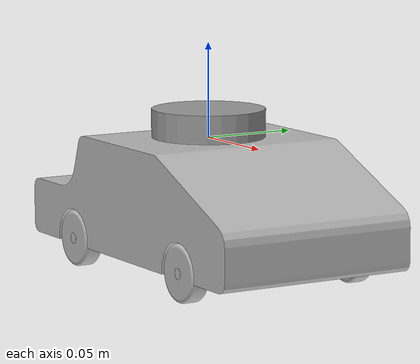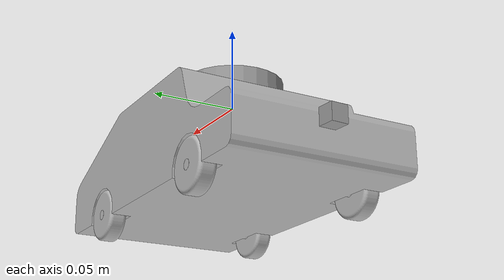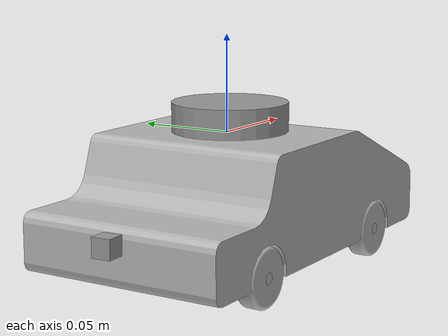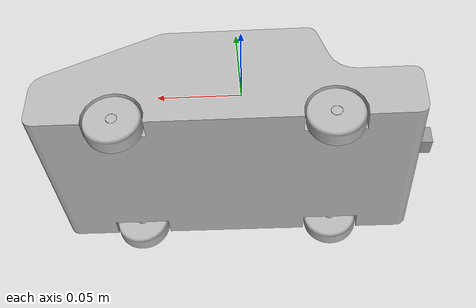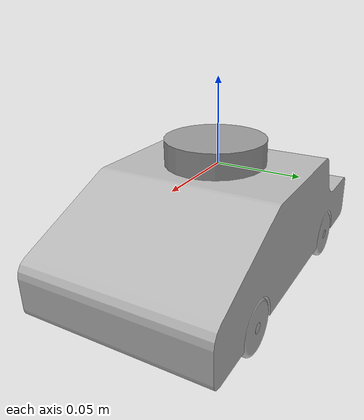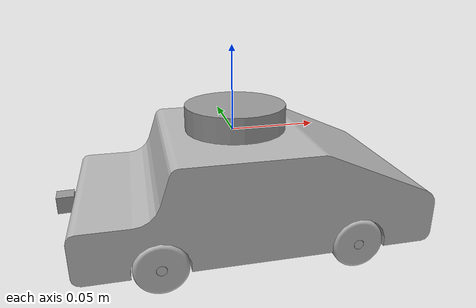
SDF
<?xml version='1.0'?>
<sdf version='1.5'>
  <model name='bfl_14'>
    <link name='base_link'>
      <inertial>
        <pose>0.009108 0 -0.033726 0 -0 0</pose>
        <mass>1.01774</mass>
        <inertia>
          <ixx>0.00123679</ixx>
          <ixy>4.78648e-20</ixy>
          <ixz>-3.11721e-05</ixz>
          <iyy>0.00293732</iyy>
          <iyz>1.98612e-20</iyz>
          <izz>0.00365409</izz>
        </inertia>
      </inertial>
      <self_collide>0</self_collide>
      <enable_wind>0</enable_wind>
      <kinematic>0</kinematic>
      <pose>0 0 0 0 -0 0</pose>
      <visual name='base_link_visual'>
        <pose>0 0 0 0 -0 0</pose>
        <geometry>
          <mesh>
            <scale>1 1 1</scale>
            <uri>/home/bfl/catkin_ws/src/full_tesla_truck_urdf/meshes/base_link.STL</uri>
          </mesh>
        </geometry>
        <material>
          <shader type='pixel'/>
          <emissive>0 0 0 1</emissive>
        </material>
        <transparency>0</transparency>
        <cast_shadows>1</cast_shadows>
      </visual>
      <collision name='base_link_collision'>
        <laser_retro>0</laser_retro>
        <max_contacts>10</max_contacts>
        <pose>0 0 0 0 -0 0</pose>
        <geometry>
          <mesh>
            <uri>/home/bfl/catkin_ws/src/full_tesla_truck_urdf/meshes/base_link.STL</uri>
            <scale>1 1 1</scale>
          </mesh>
        </geometry>
        <surface>
          <friction>
            <ode>
              <mu>1</mu>
              <mu2>1</mu2>
              <fdir1>0 0 0</fdir1>
              <slip1>0</slip1>
              <slip2>0</slip2>
            </ode>
            <torsional>
              <coefficient>1</coefficient>
              <patch_radius>0</patch_radius>
              <surface_radius>0</surface_radius>
              <use_patch_radius>1</use_patch_radius>
              <ode>
                <slip>0</slip>
              </ode>
            </torsional>
          </friction>
          <bounce>
            <restitution_coefficient>0</restitution_coefficient>
            <threshold>1e+06</threshold>
          </bounce>
          <contact>
            <collide_without_contact>0</collide_without_contact>
            <collide_without_contact_bitmask>1</collide_without_contact_bitmask>
            <collide_bitmask>1</collide_bitmask>
            <ode>
              <soft_cfm>0</soft_cfm>
              <soft_erp>0.2</soft_erp>
              <kp>1e+13</kp>
              <kd>1</kd>
              <max_vel>0.01</max_vel>
              <min_depth>0</min_depth>
            </ode>
            <bullet>
              <split_impulse>1</split_impulse>
              <split_impulse_penetration_threshold>-0.01</split_impulse_penetration_threshold>
              <soft_cfm>0</soft_cfm>
              <soft_erp>0.2</soft_erp>
              <kp>1e+13</kp>
              <kd>1</kd>
            </bullet>
          </contact>
        </surface>
      </collision>
    </link>
    <link name='back_left_link'>
      <pose>-0.049669 0.054511 -0.056567 0 -0 0</pose>
      <inertial>
        <pose>0 -0.005 0 0 -0 0</pose>
        <mass>0.0066289</mass>
        <inertia>
          <ixx>4.3359e-07</ixx>
          <ixy>1.1029e-24</ixy>
          <ixz>2.93e-23</ixz>
          <iyy>7.6063e-07</iyy>
          <iyz>-1.7922e-24</iyz>
          <izz>4.3359e-07</izz>
        </inertia>
      </inertial>
      <self_collide>0</self_collide>
      <enable_wind>0</enable_wind>
      <kinematic>0</kinematic>
      <visual name='back_left_link_visual'>
        <pose>0 0 0 0 -0 0</pose>
        <geometry>
          <mesh>
            <scale>1 1 1</scale>
            <uri>/home/bfl/catkin_ws/src/full_tesla_truck_urdf/meshes/back_left_link.STL</uri>
          </mesh>
        </geometry>
        <material>
          <shader type='pixel'/>
        </material>
        <transparency>0</transparency>
        <cast_shadows>1</cast_shadows>
      </visual>
      <collision name='back_left_link_collision'>
        <laser_retro>0</laser_retro>
        <max_contacts>10</max_contacts>
        <pose>0 0 0 0 -0 0</pose>
        <geometry>
          <mesh>
            <uri>/home/bfl/catkin_ws/src/full_tesla_truck_urdf/meshes/back_left_link.STL</uri>
            <scale>1 1 1</scale>
          </mesh>
        </geometry>
        <surface>
          <friction>
            <ode>
              <mu>1</mu>
              <mu2>1</mu2>
              <fdir1>0 0 0</fdir1>
              <slip1>0</slip1>
              <slip2>0</slip2>
            </ode>
            <torsional>
              <coefficient>1</coefficient>
              <patch_radius>0</patch_radius>
              <surface_radius>0</surface_radius>
              <use_patch_radius>1</use_patch_radius>
              <ode>
                <slip>0</slip>
              </ode>
            </torsional>
          </friction>
          <bounce>
            <restitution_coefficient>0</restitution_coefficient>
            <threshold>1e+06</threshold>
          </bounce>
          <contact>
            <collide_without_contact>0</collide_without_contact>
            <collide_without_contact_bitmask>1</collide_without_contact_bitmask>
            <collide_bitmask>1</collide_bitmask>
            <ode>
              <soft_cfm>0</soft_cfm>
              <soft_erp>0.2</soft_erp>
              <kp>1e+13</kp>
              <kd>1</kd>
              <max_vel>0.01</max_vel>
              <min_depth>0</min_depth>
            </ode>
            <bullet>
              <split_impulse>1</split_impulse>
              <split_impulse_penetration_threshold>-0.01</split_impulse_penetration_threshold>
              <soft_cfm>0</soft_cfm>
              <soft_erp>0.2</soft_erp>
              <kp>1e+13</kp>
              <kd>1</kd>
            </bullet>
          </contact>
        </surface>
      </collision>
    </link>
    <link name='back_right_link'>
      <pose>-0.049669 -0.054464 -0.056567 0 -0 0</pose>
      <inertial>
        <pose>0 0.005 0 0 -0 0</pose>
        <mass>0.0066289</mass>
        <inertia>
          <ixx>4.3359e-07</ixx>
          <ixy>-3.108e-24</ixy>
          <ixz>-2.4808e-23</ixz>
          <iyy>7.6063e-07</iyy>
          <iyz>-1.6326e-24</iyz>
          <izz>4.3359e-07</izz>
        </inertia>
      </inertial>
      <self_collide>0</self_collide>
      <enable_wind>0</enable_wind>
      <kinematic>0</kinematic>
      <visual name='back_right_link_visual'>
        <pose>0 0 0 0 -0 0</pose>
        <geometry>
          <mesh>
            <scale>1 1 1</scale>
            <uri>/home/bfl/catkin_ws/src/full_tesla_truck_urdf/meshes/back_right_link.STL</uri>
          </mesh>
        </geometry>
        <material>
          <shader type='pixel'/>
        </material>
        <transparency>0</transparency>
        <cast_shadows>1</cast_shadows>
      </visual>
      <collision name='back_right_link_collision'>
        <laser_retro>0</laser_retro>
        <max_contacts>10</max_contacts>
        <pose>0 0 0 0 -0 0</pose>
        <geometry>
          <mesh>
            <uri>/home/bfl/catkin_ws/src/full_tesla_truck_urdf/meshes/back_right_link.STL</uri>
            <scale>1 1 1</scale>
          </mesh>
        </geometry>
        <surface>
          <friction>
            <ode>
              <mu>1</mu>
              <mu2>1</mu2>
              <fdir1>0 0 0</fdir1>
              <slip1>0</slip1>
              <slip2>0</slip2>
            </ode>
            <torsional>
              <coefficient>1</coefficient>
              <patch_radius>0</patch_radius>
              <surface_radius>0</surface_radius>
              <use_patch_radius>1</use_patch_radius>
              <ode>
                <slip>0</slip>
              </ode>
            </torsional>
          </friction>
          <bounce>
            <restitution_coefficient>0</restitution_coefficient>
            <threshold>1e+06</threshold>
          </bounce>
          <contact>
            <collide_without_contact>0</collide_without_contact>
            <collide_without_contact_bitmask>1</collide_without_contact_bitmask>
            <collide_bitmask>1</collide_bitmask>
            <ode>
              <soft_cfm>0</soft_cfm>
              <soft_erp>0.2</soft_erp>
              <kp>1e+13</kp>
              <kd>1</kd>
              <max_vel>0.01</max_vel>
              <min_depth>0</min_depth>
            </ode>
            <bullet>
              <split_impulse>1</split_impulse>
              <split_impulse_penetration_threshold>-0.01</split_impulse_penetration_threshold>
              <soft_cfm>0</soft_cfm>
              <soft_erp>0.2</soft_erp>
              <kp>1e+13</kp>
              <kd>1</kd>
            </bullet>
          </contact>
        </surface>
      </collision>
    </link>
    <link name='front_left_link'>
      <pose>0.06153 0.054495 -0.056567 0 -0 0</pose>
      <inertial>
        <pose>0 -0.005 0 0 -0 0</pose>
        <mass>0.0066289</mass>
        <inertia>
          <ixx>4.3359e-07</ixx>
          <ixy>-2.7573e-25</ixy>
          <ixz>5.076e-23</ixz>
          <iyy>7.6063e-07</iyy>
          <iyz>4.1359e-24</iyz>
          <izz>4.3359e-07</izz>
        </inertia>
      </inertial>
      <self_collide>0</self_collide>
      <enable_wind>0</enable_wind>
      <kinematic>0</kinematic>
      <visual name='front_left_link_visual'>
        <pose>0 0 0 0 -0 0</pose>
        <geometry>
          <mesh>
            <scale>1 1 1</scale>
            <uri>/home/bfl/catkin_ws/src/full_tesla_truck_urdf/meshes/front_left_link.STL</uri>
          </mesh>
        </geometry>
        <material>
          <shader type='pixel'/>
        </material>
        <transparency>0</transparency>
        <cast_shadows>1</cast_shadows>
      </visual>
      <collision name='front_left_link_collision'>
        <laser_retro>0</laser_retro>
        <max_contacts>10</max_contacts>
        <pose>0 0 0 0 -0 0</pose>
        <geometry>
          <mesh>
            <uri>/home/bfl/catkin_ws/src/full_tesla_truck_urdf/meshes/front_left_link.STL</uri>
            <scale>1 1 1</scale>
          </mesh>
        </geometry>
        <surface>
          <friction>
            <ode>
              <mu>1</mu>
              <mu2>1</mu2>
              <fdir1>0 0 0</fdir1>
              <slip1>0</slip1>
              <slip2>0</slip2>
            </ode>
            <torsional>
              <coefficient>1</coefficient>
              <patch_radius>0</patch_radius>
              <surface_radius>0</surface_radius>
              <use_patch_radius>1</use_patch_radius>
              <ode>
                <slip>0</slip>
              </ode>
            </torsional>
          </friction>
          <bounce>
            <restitution_coefficient>0</restitution_coefficient>
            <threshold>1e+06</threshold>
          </bounce>
          <contact>
            <collide_without_contact>0</collide_without_contact>
            <collide_without_contact_bitmask>1</collide_without_contact_bitmask>
            <collide_bitmask>1</collide_bitmask>
            <ode>
              <soft_cfm>0</soft_cfm>
              <soft_erp>0.2</soft_erp>
              <kp>1e+13</kp>
              <kd>1</kd>
              <max_vel>0.01</max_vel>
              <min_depth>0</min_depth>
            </ode>
            <bullet>
              <split_impulse>1</split_impulse>
              <split_impulse_penetration_threshold>-0.01</split_impulse_penetration_threshold>
              <soft_cfm>0</soft_cfm>
              <soft_erp>0.2</soft_erp>
              <kp>1e+13</kp>
              <kd>1</kd>
            </bullet>
          </contact>
        </surface>
      </collision>
    </link>
    <link name='front_right_link'>
      <pose>0.06153 -0.054505 -0.056567 0 -0 0</pose>
      <inertial>
        <pose>0 0.005 0 0 -0 0</pose>
        <mass>0.0066289</mass>
        <inertia>
          <ixx>4.3359e-07</ixx>
          <ixy>-2.8345e-24</ixy>
          <ixz>5.0785e-24</ixz>
          <iyy>7.6063e-07</iyy>
          <iyz>-1.8072e-24</iyz>
          <izz>4.3359e-07</izz>
        </inertia>
      </inertial>
      <self_collide>0</self_collide>
      <enable_wind>0</enable_wind>
      <kinematic>0</kinematic>
      <visual name='front_right_link_visual'>
        <pose>0 0 0 0 -0 0</pose>
        <geometry>
          <mesh>
            <scale>1 1 1</scale>
            <uri>/home/bfl/catkin_ws/src/full_tesla_truck_urdf/meshes/front_right_link.STL</uri>
          </mesh>
        </geometry>
        <material>
          <shader type='pixel'/>
        </material>
        <transparency>0</transparency>
        <cast_shadows>1</cast_shadows>
      </visual>
      <collision name='front_right_link_collision'>
        <laser_retro>0</laser_retro>
        <max_contacts>10</max_contacts>
        <pose>0 0 0 0 -0 0</pose>
        <geometry>
          <mesh>
            <uri>/home/bfl/catkin_ws/src/full_tesla_truck_urdf/meshes/front_right_link.STL</uri>
            <scale>1 1 1</scale>
          </mesh>
        </geometry>
        <surface>
          <friction>
            <ode>
              <mu>1</mu>
              <mu2>1</mu2>
              <fdir1>0 0 0</fdir1>
              <slip1>0</slip1>
              <slip2>0</slip2>
            </ode>
            <torsional>
              <coefficient>1</coefficient>
              <patch_radius>0</patch_radius>
              <surface_radius>0</surface_radius>
              <use_patch_radius>1</use_patch_radius>
              <ode>
                <slip>0</slip>
              </ode>
            </torsional>
          </friction>
          <bounce>
            <restitution_coefficient>0</restitution_coefficient>
            <threshold>1e+06</threshold>
          </bounce>
          <contact>
            <collide_without_contact>0</collide_without_contact>
            <collide_without_contact_bitmask>1</collide_without_contact_bitmask>
            <collide_bitmask>1</collide_bitmask>
            <ode>
              <soft_cfm>0</soft_cfm>
              <soft_erp>0.2</soft_erp>
              <kp>1e+13</kp>
              <kd>1</kd>
              <max_vel>0.01</max_vel>
              <min_depth>0</min_depth>
            </ode>
            <bullet>
              <split_impulse>1</split_impulse>
              <split_impulse_penetration_threshold>-0.01</split_impulse_penetration_threshold>
              <soft_cfm>0</soft_cfm>
              <soft_erp>0.2</soft_erp>
              <kp>1e+13</kp>
              <kd>1</kd>
            </bullet>
          </contact>
        </surface>
      </collision>
    </link>
    <link name='link_0'>
      <inertial>
        <mass>1</mass>
        <inertia>
          <ixx>0.145833</ixx>
          <ixy>0</ixy>
          <ixz>0</ixz>
          <iyy>0.145833</iyy>
          <iyz>0</iyz>
          <izz>0.125</izz>
        </inertia>
        <pose>0 0 0 0 -0 0</pose>
      </inertial>
      <pose>0.001446 -0.000805 0.008219 -3.1e-05 -8.2e-05 -0.307271</pose>
      <gravity>1</gravity>
      <self_collide>0</self_collide>
      <kinematic>0</kinematic>
      <enable_wind>0</enable_wind>
      <visual name='visual'>
        <pose>0 0 0 0 -0 0</pose>
        <geometry>
          <cylinder>
            <radius>0.03</radius>
            <length>0.015</length>
          </cylinder>
        </geometry>
        <material>
          <lighting>1</lighting>
          <script>
            <uri>file://media/materials/scripts/gazebo.material</uri>
            <name>Gazebo/Grey</name>
          </script>
          <shader type='pixel'>
            <normal_map>__default__</normal_map>
          </shader>
          <ambient>0.3 0.3 0.3 1</ambient>
          <diffuse>0.7 0.7 0.7 1</diffuse>
          <specular>0.01 0.01 0.01 1</specular>
          <emissive>0 0 0 1</emissive>
        </material>
        <transparency>0</transparency>
        <cast_shadows>1</cast_shadows>
      </visual>
      <collision name='collision'>
        <laser_retro>0</laser_retro>
        <max_contacts>10</max_contacts>
        <pose>0 0 0 0 -0 0</pose>
        <geometry>
          <cylinder>
            <radius>0.03</radius>
            <length>0.015</length>
          </cylinder>
        </geometry>
        <surface>
          <friction>
            <ode>
              <mu>1</mu>
              <mu2>1</mu2>
              <fdir1>0 0 0</fdir1>
              <slip1>0</slip1>
              <slip2>0</slip2>
            </ode>
            <torsional>
              <coefficient>1</coefficient>
              <patch_radius>0</patch_radius>
              <surface_radius>0</surface_radius>
              <use_patch_radius>1</use_patch_radius>
              <ode>
                <slip>0</slip>
              </ode>
            </torsional>
          </friction>
          <bounce>
            <restitution_coefficient>0</restitution_coefficient>
            <threshold>1e+06</threshold>
          </bounce>
          <contact>
            <collide_without_contact>0</collide_without_contact>
            <collide_without_contact_bitmask>1</collide_without_contact_bitmask>
            <collide_bitmask>1</collide_bitmask>
            <ode>
              <soft_cfm>0</soft_cfm>
              <soft_erp>0.2</soft_erp>
              <kp>1e+13</kp>
              <kd>1</kd>
              <max_vel>0.01</max_vel>
              <min_depth>0</min_depth>
            </ode>
            <bullet>
              <split_impulse>1</split_impulse>
              <split_impulse_penetration_threshold>-0.01</split_impulse_penetration_threshold>
              <soft_cfm>0</soft_cfm>
              <soft_erp>0.2</soft_erp>
              <kp>1e+13</kp>
              <kd>1</kd>
            </bullet>
          </contact>
        </surface>
      </collision>
    </link>
    <link name='link_1'>
      <inertial>
        <mass>1</mass>
        <inertia>
          <ixx>0.166667</ixx>
          <ixy>0</ixy>
          <ixz>0</ixz>
          <iyy>0.166667</iyy>
          <iyz>0</iyz>
          <izz>0.166667</izz>
        </inertia>
        <pose>0 0 0 0 -0 0</pose>
      </inertial>
      <pose>-0.099965 0.000523 -0.037493 -5.8e-05 -6.6e-05 0.057909</pose>
      <gravity>1</gravity>
      <self_collide>0</self_collide>
      <kinematic>0</kinematic>
      <enable_wind>0</enable_wind>
      <visual name='visual'>
        <pose>0 0 0 0 -0 0</pose>
        <geometry>
          <box>
            <size>0.01 0.01 0.01</size>
          </box>
        </geometry>
        <material>
          <lighting>1</lighting>
          <script>
            <uri>file://media/materials/scripts/gazebo.material</uri>
            <name>Gazebo/Grey</name>
          </script>
          <shader type='pixel'>
            <normal_map>__default__</normal_map>
          </shader>
          <ambient>0.3 0.3 0.3 1</ambient>
          <diffuse>0.7 0.7 0.7 1</diffuse>
          <specular>0.01 0.01 0.01 1</specular>
          <emissive>0 0 0 1</emissive>
        </material>
        <transparency>0</transparency>
        <cast_shadows>1</cast_shadows>
      </visual>
      <collision name='collision'>
        <laser_retro>0</laser_retro>
        <max_contacts>10</max_contacts>
        <pose>0 0 0 0 -0 0</pose>
        <geometry>
          <box>
            <size>0.01 0.01 0.01</size>
          </box>
        </geometry>
        <surface>
          <friction>
            <ode>
              <mu>1</mu>
              <mu2>1</mu2>
              <fdir1>0 0 0</fdir1>
              <slip1>0</slip1>
              <slip2>0</slip2>
            </ode>
            <torsional>
              <coefficient>1</coefficient>
              <patch_radius>0</patch_radius>
              <surface_radius>0</surface_radius>
              <use_patch_radius>1</use_patch_radius>
              <ode>
                <slip>0</slip>
              </ode>
            </torsional>
          </friction>
          <bounce>
            <restitution_coefficient>0</restitution_coefficient>
            <threshold>1e+06</threshold>
          </bounce>
          <contact>
            <collide_without_contact>0</collide_without_contact>
            <collide_without_contact_bitmask>1</collide_without_contact_bitmask>
            <collide_bitmask>1</collide_bitmask>
            <ode>
              <soft_cfm>0</soft_cfm>
              <soft_erp>0.2</soft_erp>
              <kp>1e+13</kp>
              <kd>1</kd>
              <max_vel>0.01</max_vel>
              <min_depth>0</min_depth>
            </ode>
            <bullet>
              <split_impulse>1</split_impulse>
              <split_impulse_penetration_threshold>-0.01</split_impulse_penetration_threshold>
              <soft_cfm>0</soft_cfm>
              <soft_erp>0.2</soft_erp>
              <kp>1e+13</kp>
              <kd>1</kd>
            </bullet>
          </contact>
        </surface>
      </collision>
    </link>
    <joint name='back_left_joint' type='revolute'>
      <parent>base_link</parent>
      <child>back_left_link</child>
      <pose>0 0 0 0 -0 0</pose>
      <axis>
        <xyz>0 -1 0</xyz>
        <limit>
          <lower>-1e+16</lower>
          <upper>1e+16</upper>
          <effort>0</effort>
          <velocity>0</velocity>
        </limit>
        <dynamics>
          <spring_reference>0</spring_reference>
          <spring_stiffness>0</spring_stiffness>
          <damping>0</damping>
          <friction>0</friction>
        </dynamics>
      </axis>
      <physics>
        <ode>
          <limit>
            <cfm>0</cfm>
            <erp>0.2</erp>
          </limit>
          <suspension>
            <cfm>0</cfm>
            <erp>0.2</erp>
          </suspension>
        </ode>
      </physics>
    </joint>
    <joint name='back_right_joint' type='revolute'>
      <parent>base_link</parent>
      <child>back_right_link</child>
      <pose>0 0 0 0 -0 0</pose>
      <axis>
        <xyz>0 1 0</xyz>
        <limit>
          <lower>-1e+16</lower>
          <upper>1e+16</upper>
          <effort>0</effort>
          <velocity>0</velocity>
        </limit>
        <dynamics>
          <spring_reference>0</spring_reference>
          <spring_stiffness>0</spring_stiffness>
          <damping>0</damping>
          <friction>0</friction>
        </dynamics>
      </axis>
      <physics>
        <ode>
          <limit>
            <cfm>0</cfm>
            <erp>0.2</erp>
          </limit>
          <suspension>
            <cfm>0</cfm>
            <erp>0.2</erp>
          </suspension>
        </ode>
      </physics>
    </joint>
    <joint name='lidar_joint' type='fixed'>
      <parent>base_link</parent>
      <child>link_0</child>
      <pose>0 0 0 0 -0 0</pose>
      <physics>
        <ode>
          <limit>
            <cfm>0</cfm>
            <erp>0.2</erp>
          </limit>
          <suspension>
            <cfm>0</cfm>
            <erp>0.2</erp>
          </suspension>
        </ode>
      </physics>
    </joint>
    <joint name='camera_joint' type='fixed'>
      <parent>base_link</parent>
      <child>link_1</child>
      <pose>0 0 0 0 -0 0</pose>
      <physics>
        <ode>
          <limit>
            <cfm>0</cfm>
            <erp>0.2</erp>
          </limit>
          <suspension>
            <cfm>0</cfm>
            <erp>0.2</erp>
          </suspension>
        </ode>
      </physics>
    </joint>
    <joint name='front_left_joint' type='revolute'>
      <parent>base_link</parent>
      <child>front_left_link</child>
      <pose>0 0 0 0 -0 0</pose>
      <axis>
        <xyz>0 -1 0</xyz>
        <limit>
          <lower>-1e+16</lower>
          <upper>1e+16</upper>
          <effort>0</effort>
          <velocity>0</velocity>
        </limit>
        <dynamics>
          <spring_reference>0</spring_reference>
          <spring_stiffness>0</spring_stiffness>
          <damping>0</damping>
          <friction>0</friction>
        </dynamics>
      </axis>
      <physics>
        <ode>
          <limit>
            <cfm>0</cfm>
            <erp>0.2</erp>
          </limit>
          <suspension>
            <cfm>0</cfm>
            <erp>0.2</erp>
          </suspension>
        </ode>
      </physics>
    </joint>
    <joint name='front_right_joint' type='revolute'>
      <parent>base_link</parent>
      <child>front_right_link</child>
      <pose>0 0 0 0 -0 0</pose>
      <axis>
        <xyz>0 1 0</xyz>
        <limit>
          <lower>-1e+16</lower>
          <upper>1e+16</upper>
          <effort>0</effort>
          <velocity>0</velocity>
        </limit>
        <dynamics>
          <spring_reference>0</spring_reference>
          <spring_stiffness>0</spring_stiffness>
          <damping>0</damping>
          <friction>0</friction>
        </dynamics>
      </axis>
      <physics>
        <ode>
          <limit>
            <cfm>0</cfm>
            <erp>0.2</erp>
          </limit>
          <suspension>
            <cfm>0</cfm>
            <erp>0.2</erp>
          </suspension>
        </ode>
      </physics>
    </joint>
    <static>0</static>
    <allow_auto_disable>1</allow_auto_disable>
  </model>
</sdf>
